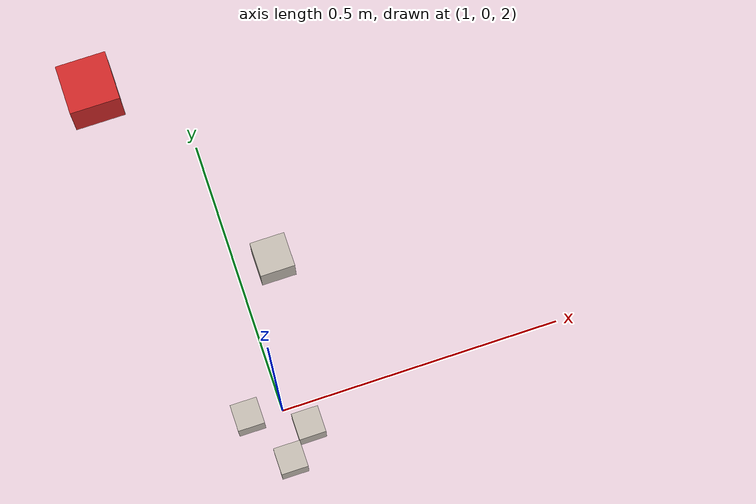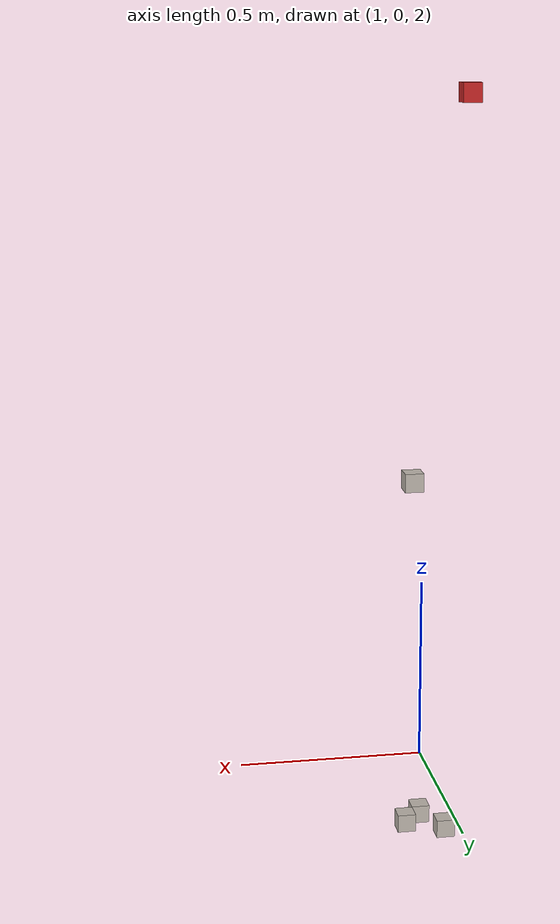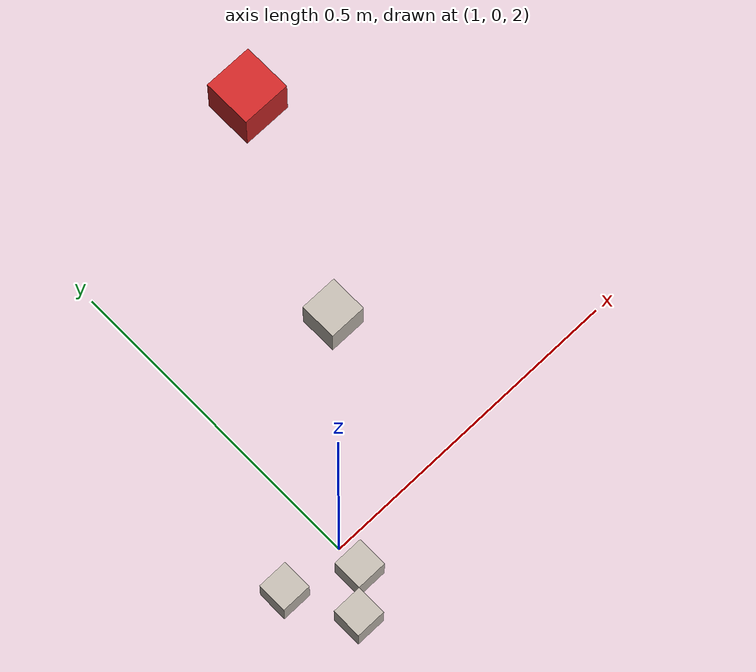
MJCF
<mujoco>
    <asset>
        <texture name="texture_block" file="./textures/block.png" gridsize="3 4" gridlayout=".U..LFRB.D.."></texture>
        <texture name="texture_block_red" file="./textures/block_red.png" gridsize="3 4" gridlayout=".U..LFRB.D.."></texture>
		<material name="block_mat" texture="texture_block" specular="0" shininess="0.5" reflectance="0"></material>
        <material name="block_mat_red" texture="texture_block_red" specular="0" shininess="0.5" reflectance="0"></material>
	</asset>

    <worldbody>
        <body name="object0" pos="0.94 0.05 1.8">
            <joint name="object0:joint" type="free" damping="0.1" limited="false"></joint>
            <geom size="0.025 0.025 0.025" type="box" solimp="0.01 0.01 0.01" condim="3" name="object0" material="block_mat" mass="20"></geom>
            <site name="object0" pos="0 0 0" size="0.02 0.02 0.02" rgba="0.9 0.2 0 1" type="sphere"></site>
        </body>

        <body name="object1" pos="1.04 0.05 2.8">
            <joint name="object1:joint" type="free" damping="0.1" limited="false"></joint>
            <geom size="0.025 0.025 0.025" type="box" solimp="0.01 0.01 0.01" condim="3" name="object1" material="block_mat" mass="20"></geom>
            <site name="object1" pos="0 0 0" size="0.02 0.02 0.02" rgba="0.9 0.2 0 1" type="sphere"></site>
        </body>

        <body name="object2" pos="0.99 -0.05 1.8">
            <joint name="object2:joint" type="free" damping="0.1" limited="false"></joint>
            <geom size="0.025 0.025 0.025" type="box" solimp="0.01 0.01 0.01" condim="3" name="object2" material="block_mat" mass="20"></geom>
            <site name="object2" pos="0 0 0" size="0.02 0.02 0.02" rgba="0.9 0.2 0 1" type="sphere"></site>
        </body>

        <body name="object3" pos="0.99 -0.05 1.8">
            <joint name="object3:joint" type="free" damping="0.1" limited="false"></joint>
            <geom size="0.025 0.025 0.025" type="box" solimp="0.01 0.01 0.01" condim="3" name="object3" material="block_mat" mass="20"></geom>
            <site name="object3" pos="0 0 0" size="0.02 0.02 0.02" rgba="0.9 0.2 0 1" type="sphere"></site>
        </body>

        <body name="object4" pos="1.04 0.0 1.8">
            <joint name="object4:joint" type="free" damping="0.1" limited="false"></joint>
            <geom size="0.025 0.025 0.025" type="box" solimp="0.01 0.01 0.01" condim="3" name="object4" material="block_mat" mass="20"></geom>
            <site name="object4" pos="0 0 0" size="0.02 0.02 0.02" rgba="0.9 0.2 0 1" type="sphere"></site>
        </body>

        <body name="object11" pos="0.89 0.00 3.8">
            <joint name="object11:joint" type="free" damping="0.0" limited="false"></joint>
            <geom size="0.025 0.025 0.025"  solimp="0.2 0.01 0.0001"  condim="6" type="box" name="object11" material="block_mat_red" mass="20"></geom>
            <site name="object11" pos="0 0 0" size="0.02 0.02 0.02" rgba="0.9 0.2 0 1" type="sphere"></site>
        </body>

    </worldbody>
</mujoco>
